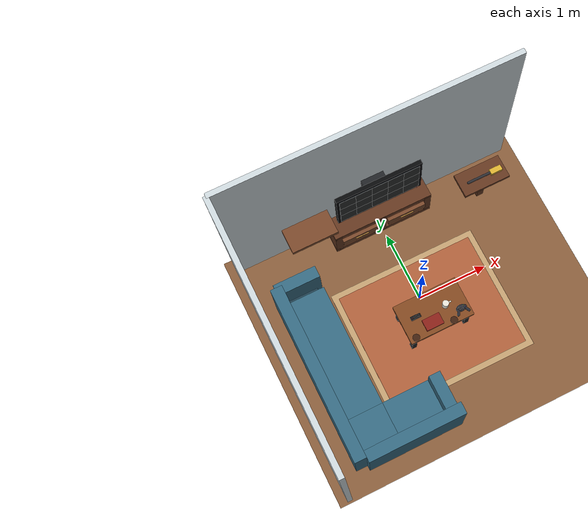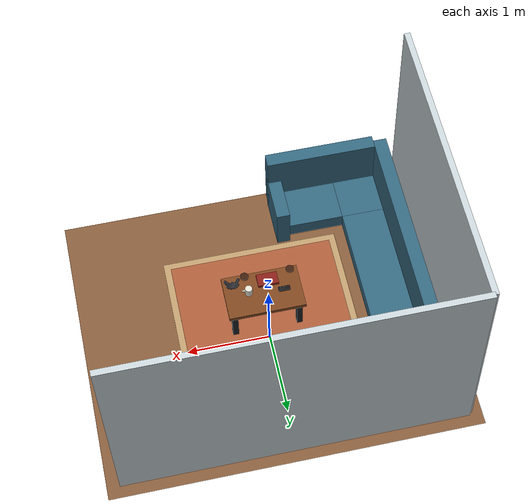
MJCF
<mujoco model="google_robot_living_room">
  <compiler angle="radian" autolimits="true"/>
  <option gravity="0 0 -9.81" timestep="0.002"/>

  <visual>
    <global offwidth="1920" offheight="1080"/>
    <quality shadowsize="4096"/>
    <headlight ambient="0.24 0.25 0.27" diffuse="0.55 0.56 0.58"
               specular="0.12 0.12 0.12"/>
  </visual>

  <default>
    <joint damping="0.8"/>
    <geom condim="4" friction="0.9 0.03 0.01"/>
    <default class="visual">
      <geom contype="0" conaffinity="0" group="1"/>
    </default>
    <default class="collision">
      <geom group="3"/>
    </default>
  </default>

  <asset>
    <texture name="living_sky" type="skybox" builtin="gradient"
             rgb1="0.72 0.82 0.94" rgb2="0.20 0.29 0.43"
             width="512" height="3072"/>
    <texture name="living_floor_tex" type="2d" builtin="checker"
             rgb1="0.56 0.39 0.25" rgb2="0.48 0.32 0.20"
             width="256" height="256" mark="none"/>
    <material name="living_floor" texture="living_floor_tex" texrepeat="8 6"/>
    <material name="media_wall" rgba="0.78 0.82 0.84 1" roughness="0.92"/>
    <material name="rug" rgba="0.66 0.36 0.22 1" roughness="0.95"/>
    <material name="rug_border" rgba="0.74 0.61 0.43 1" roughness="0.95"/>
    <material name="couch_fabric" rgba="0.20 0.40 0.49 1" roughness="0.86"/>
    <material name="couch_frame" rgba="0.11 0.23 0.29 1"/>
    <material name="table_wood" rgba="0.49 0.27 0.12 1" roughness="0.60"/>
    <material name="table_metal" rgba="0.12 0.13 0.14 1" specular="0.45"/>
    <material name="console_wood" rgba="0.38 0.21 0.12 1" roughness="0.58"/>
    <material name="console_face" rgba="0.46 0.27 0.16 1" roughness="0.62"/>
    <material name="brass" rgba="0.72 0.52 0.22 1" specular="0.5" roughness="0.32"/>
    <material name="tv_frame" rgba="0.025 0.028 0.032 1" specular="0.5"/>
    <material name="tv_screen" rgba="0.055 0.075 0.095 1" specular="0.8"/>
    <material name="dust" rgba="0.62 0.62 0.58 0.42"/>
    <material name="dust_film" rgba="0.58 0.55 0.48 0.24" roughness="1"/>
    <material name="remote" rgba="0.08 0.08 0.09 1"/>
    <material name="book" rgba="0.52 0.12 0.09 1"/>
    <material name="ceramic" rgba="0.88 0.87 0.82 1" specular="0.35"/>
    <material name="coaster" rgba="0.24 0.12 0.055 1"/>
    <material name="controller" rgba="0.16 0.16 0.19 1"/>
    <material name="duster_handle" rgba="0.18 0.18 0.20 1"/>
    <material name="duster_head" rgba="0.84 0.68 0.18 1"/>
    <material name="target_marker" rgba="0.18 0.65 0.30 0.16"/>
  </asset>

  <worldbody>
    <light name="ceiling_light" pos="0 -0.45 3.25" dir="0 0 -1"
           diffuse="0.92 0.82 0.70" specular="0.20 0.18 0.16"
           castshadow="true"/>
    <light name="window_fill" pos="1.7 -0.9 2.35" dir="-0.65 0.35 -0.68"
           diffuse="0.48 0.62 0.78" specular="0.12 0.15 0.18"/>
    <light name="media_wall_wash" pos="-1.15 0.65 2.15" dir="0.35 0.55 -0.75"
           diffuse="0.42 0.34 0.27" specular="0.08 0.07 0.06"/>

    <geom name="floor" type="plane" size="2.2 1.85 0.02"
          pos="0 -0.20 0" material="living_floor"/>
    <!-- Full-height north and west walls form the visible room corner.  The
         north wall is set behind the closed drawer backs so storage remains
         collision-free. -->
    <body name="media_feature_wall">
      <geom name="media_feature_wall_panel" type="box" size="2.05 0.035 1.35"
            pos="0 1.48 1.35" material="media_wall"/>
      <geom name="west_feature_wall_panel" type="box" size="0.035 1.75 1.35"
            pos="-2.05 -0.27 1.35" material="media_wall"/>
    </body>

    <!-- A flat, non-colliding area rug lifts the seating group visually
         without changing navigation or manipulation contact. -->
    <body name="living_room_rug">
      <geom name="living_room_rug_border" class="visual" type="box"
            size="1.08 0.91 0.004" pos="0 -0.35 0.007"
            material="rug_border"/>
      <geom name="living_room_rug_field" class="visual" type="box"
            size="1.00 0.83 0.005" pos="0 -0.35 0.012"
            material="rug"/>
    </body>
    <body name="living_room_couch">
      <geom name="couch_corner_base" type="box" size="0.25 0.25 0.06"
            pos="-1.47 -1.47 0.30" material="couch_frame"/>
      <geom name="couch_west_base" type="box" size="0.25 0.95 0.06"
            pos="-1.47 -0.27 0.30" material="couch_frame"/>
      <geom name="couch_south_base" type="box" size="0.375 0.25 0.06"
            pos="-0.845 -1.47 0.30" material="couch_frame"/>

      <geom name="couch_leg_corner" type="box" size="0.045 0.045 0.12"
            pos="-1.47 -1.47 0.12" material="couch_frame"/>
      <geom name="couch_leg_west_north" type="box" size="0.045 0.045 0.12"
            pos="-1.47 0.63 0.12" material="couch_frame"/>
      <geom name="couch_leg_west_middle" type="box" size="0.045 0.045 0.12"
            pos="-1.47 -0.42 0.12" material="couch_frame"/>
      <geom name="couch_leg_south_east" type="box" size="0.045 0.045 0.12"
            pos="-0.47 -1.47 0.12" material="couch_frame"/>

      <geom name="couch_corner_seat" type="box" size="0.28 0.28 0.09"
            pos="-1.43 -1.43 0.45" material="couch_fabric"/>
      <geom name="couch_west_seat" type="box" size="0.28 0.86 0.09"
            pos="-1.43 -0.29 0.45" material="couch_fabric"/>
      <geom name="couch_south_seat" type="box" size="0.325 0.28 0.09"
            pos="-0.825 -1.43 0.45" material="couch_fabric"/>

      <geom name="couch_west_back" type="box" size="0.08 1.20 0.42"
            pos="-1.74 -0.55 0.72" material="couch_fabric"/>
      <geom name="couch_south_back" type="box" size="0.66 0.08 0.42"
            pos="-1.00 -1.74 0.72" material="couch_fabric"/>
      <geom name="couch_north_arm" type="box" size="0.30 0.08 0.28"
            pos="-1.45 0.73 0.50" material="couch_fabric"/>
      <geom name="couch_east_arm" type="box" size="0.08 0.30 0.28"
            pos="-0.42 -1.45 0.50" material="couch_fabric"/>
    </body>

    <!-- Fixed rigid coffee table. -->
    <body name="coffee_table" pos="0 -0.35 0">
      <geom name="coffee_table_top" type="box" size="0.46 0.28 0.025"
            pos="0 0 0.46" material="table_wood"/>
      <geom name="coffee_table_leg_nw" type="box" size="0.035 0.035 0.205"
            pos="-0.39 0.21 0.23" material="table_metal" mass="1.2"/>
      <geom name="coffee_table_leg_ne" type="box" size="0.035 0.035 0.205"
            pos="0.39 0.21 0.23" material="table_metal" mass="1.2"/>
      <geom name="coffee_table_leg_sw" type="box" size="0.035 0.035 0.205"
            pos="-0.39 -0.21 0.23" material="table_metal" mass="1.2"/>
      <geom name="coffee_table_leg_se" type="box" size="0.035 0.035 0.205"
            pos="0.39 -0.21 0.23" material="table_metal" mass="1.2"/>
      <site name="coffee_table_frame" pos="0 0 0.49" size="0.01"
            rgba="0 0 0 0" group="5"/>
      <site name="table_place_remote" pos="-0.25 0.02 0.487" size="0.045 0.035 0.003"
            type="box" material="target_marker" group="4"/>
      <site name="table_place_mug" pos="0.17 -0.01 0.487" size="0.055 0.055 0.003"
            type="box" material="target_marker" group="4"/>
      <site name="table_place_book" pos="-0.08 -0.14 0.487" size="0.13 0.08 0.003"
            type="box" material="target_marker" group="4"/>
      <site name="table_place_controller" pos="0.34 -0.14 0.487"
            size="0.095 0.075 0.003" type="box"
            material="target_marker" group="4"/>
    </body>

    <!-- Independent rigid clutter rests on the moving tabletop through contact. -->
    <body name="remote_control" pos="-0.25 -0.33 0.502">
      <freejoint name="remote_control_free"/>
      <geom name="remote_control_collision" type="box" size="0.070 0.027 0.012"
            material="remote" mass="0.18" friction="1.1 0.04 0.01"/>
      <geom name="remote_button_1" class="visual" type="cylinder" size="0.006 0.002"
            pos="-0.025 0 0.014" material="dust"/>
      <geom name="remote_button_2" class="visual" type="cylinder" size="0.006 0.002"
            pos="0 0 0.014" material="dust"/>
      <!-- A visible keypad makes the primitive-based prop read as a remote
           control to an RGB detector instead of as a plain dark book. -->
      <geom name="remote_power_button" class="visual" type="cylinder"
            size="0.005 0.002" pos="-0.050 0 0.014" rgba="0.82 0.16 0.12 1"/>
      <geom name="remote_key_1" class="visual" type="cylinder"
            size="0.004 0.002" pos="-0.012 -0.013 0.014" rgba="0.72 0.72 0.70 1"/>
      <geom name="remote_key_2" class="visual" type="cylinder"
            size="0.004 0.002" pos="-0.012 0.013 0.014" rgba="0.72 0.72 0.70 1"/>
      <geom name="remote_key_3" class="visual" type="cylinder"
            size="0.004 0.002" pos="0.006 -0.013 0.014" rgba="0.72 0.72 0.70 1"/>
      <geom name="remote_key_4" class="visual" type="cylinder"
            size="0.004 0.002" pos="0.006 0.013 0.014" rgba="0.72 0.72 0.70 1"/>
      <geom name="remote_key_5" class="visual" type="cylinder"
            size="0.004 0.002" pos="0.024 -0.013 0.014" rgba="0.72 0.72 0.70 1"/>
      <geom name="remote_key_6" class="visual" type="cylinder"
            size="0.004 0.002" pos="0.024 0.013 0.014" rgba="0.72 0.72 0.70 1"/>
      <geom name="remote_key_7" class="visual" type="cylinder"
            size="0.004 0.002" pos="0.042 -0.013 0.014" rgba="0.72 0.72 0.70 1"/>
      <geom name="remote_key_8" class="visual" type="cylinder"
            size="0.004 0.002" pos="0.042 0.013 0.014" rgba="0.72 0.72 0.70 1"/>
      <site name="remote_control_grasp" pos="0 0 0.010" size="0.01"
            rgba="0 0 0 0" group="5"/>
    </body>

    <body name="living_room_mug" pos="0.17 -0.36 0.545">
      <freejoint name="living_room_mug_free"/>
      <geom name="living_room_mug_collision" type="cylinder" size="0.043 0.055"
            material="ceramic" mass="0.34" friction="1.0 0.03 0.01"/>
      <geom name="living_room_mug_handle" type="capsule" size="0.010"
            fromto="0.040 0 0.020 0.075 0 0.020" material="ceramic" mass="0.03"/>
      <site name="living_room_mug_grasp" pos="0 0 0.025" size="0.01"
            rgba="0 0 0 0" group="5"/>
    </body>

    <body name="hardback_book" pos="-0.08 -0.49 0.507">
      <freejoint name="hardback_book_free"/>
      <geom name="hardback_book_collision" type="box" size="0.125 0.080 0.018"
            material="book" mass="0.22" friction="1.0 0.04 0.01"/>
      <geom name="hardback_pages" class="visual" type="box" size="0.117 0.076 0.014"
            pos="0.004 0 0" material="ceramic"/>
      <site name="hardback_book_grasp" pos="0.065 0 0.020" size="0.01"
            rgba="0 0 0 0" group="5"/>
    </body>

    <body name="coaster_left" pos="-0.37 -0.58 0.502">
      <freejoint name="coaster_left_free"/>
      <geom name="coaster_left_collision" type="cylinder" size="0.050 0.008"
            material="coaster" mass="0.08" friction="1.2 0.04 0.01"
            margin="0.0045" solref="0.004 1" solimp="0.99 0.999 0.001"/>
    </body>
    <body name="coaster_right" pos="0.18 -0.59 0.502">
      <freejoint name="coaster_right_free"/>
      <geom name="coaster_right_collision" type="cylinder" size="0.050 0.008"
            material="coaster" mass="0.45" friction="3.0 0.04 0.01"
            margin="0.0045" solref="0.002 1" solimp="0.995 0.9995 0.001"/>
      <site name="coaster_right_mug_place" type="cylinder"
            size="0.034 0.001" pos="0 0 0.009"
            material="target_marker" group="4"/>
    </body>

    <body name="game_controller" pos="0.34 -0.49 0.515">
      <freejoint name="game_controller_free"/>
      <geom name="game_controller_core" type="ellipsoid" size="0.078 0.047 0.022"
            material="controller" mass="0.18" friction="1.0 0.03 0.01"/>
      <geom name="game_controller_left_grip" type="capsule" size="0.018"
            fromto="-0.048 -0.018 0 -0.078 -0.070 -0.006"
            material="controller" mass="0.05"/>
      <geom name="game_controller_right_grip" type="capsule" size="0.018"
            fromto="0.048 -0.018 0 0.078 -0.070 -0.006"
            material="controller" mass="0.05"/>
      <geom name="game_controller_dpad_h" class="visual" type="box"
            size="0.022 0.007 0.004" pos="-0.033 0.003 0.024"
            rgba="0.05 0.05 0.06 1"/>
      <geom name="game_controller_dpad_v" class="visual" type="box"
            size="0.007 0.022 0.004" pos="-0.033 0.003 0.024"
            rgba="0.05 0.05 0.06 1"/>
      <geom name="game_controller_stick_left" class="visual" type="cylinder"
            size="0.010 0.006" pos="-0.018 -0.022 0.024"
            rgba="0.04 0.04 0.05 1"/>
      <geom name="game_controller_stick_right" class="visual" type="cylinder"
            size="0.010 0.006" pos="0.018 -0.022 0.024"
            rgba="0.04 0.04 0.05 1"/>
      <geom name="game_controller_button_n" class="visual" type="cylinder"
            size="0.005 0.004" pos="0.040 0.018 0.024" rgba="0.25 0.70 0.34 1"/>
      <geom name="game_controller_button_e" class="visual" type="cylinder"
            size="0.005 0.004" pos="0.052 0.006 0.024" rgba="0.72 0.24 0.22 1"/>
      <geom name="game_controller_button_s" class="visual" type="cylinder"
            size="0.005 0.004" pos="0.040 -0.006 0.024" rgba="0.28 0.48 0.82 1"/>
      <geom name="game_controller_button_w" class="visual" type="cylinder"
            size="0.005 0.004" pos="0.028 0.006 0.024" rgba="0.86 0.70 0.20 1"/>
      <site name="game_controller_grasp" pos="0 0 0.022" size="0.010"
            rgba="0 0 0 0" group="5"/>
    </body>

    <!-- A clean wall-mounted ledge beside the TV.  The shallow overlap with
         the feature wall makes it read as attached rather than floating. -->
    <body name="media_book_shelf">
      <geom name="media_book_shelf_plank" type="box" size="0.33 0.175 0.03"
            pos="-1.00 1.27 0.75" material="console_face"/>
      <geom name="media_book_shelf_bracket_left" class="visual" type="box"
            size="0.018 0.06 0.09" pos="-1.22 1.385 0.66"
            material="brass"/>
      <geom name="media_book_shelf_bracket_right" class="visual" type="box"
            size="0.018 0.06 0.09" pos="-0.78 1.385 0.66"
            material="brass"/>
      <site name="media_shelf_book_place" type="box"
            size="0.13 0.08 0.003" pos="-1.00 1.14 0.781"
            material="target_marker" group="4"/>
      <site name="media_shelf_controller_place" type="box"
            size="0.10 0.08 0.003" pos="-1.00 1.14 0.781"
            material="target_marker" group="4"/>
    </body>

    <!-- Low media console with two independent south-opening rigid drawers. -->
    <body name="media_console">
      <geom name="media_console_top" type="box" size="0.72 0.15 0.04"
            pos="0 1.25 0.48" material="console_wood"/>
      <geom name="media_console_bottom" type="box" size="0.72 0.15 0.04"
            pos="0 1.25 0.06" material="console_wood"/>
      <geom name="media_console_left_side" type="box" size="0.05 0.15 0.21"
            pos="-0.67 1.25 0.27" material="console_wood"/>
      <geom name="media_console_right_side" type="box" size="0.05 0.15 0.21"
            pos="0.67 1.25 0.27" material="console_wood"/>
      <geom name="media_console_divider" type="box" size="0.035 0.15 0.21"
            pos="0 1.25 0.27" material="console_wood"/>
      <geom name="media_console_back" type="box" size="0.62 0.025 0.17"
            pos="0 1.375 0.27" material="console_wood"/>
      <body name="media_console_left_drawer" pos="-0.34 1.25 0.27">
        <joint name="media_console_left_drawer_slide" type="slide" axis="0 -1 0"
               range="0 0.27" damping="8" frictionloss="0.5" armature="0.5"/>
        <geom name="media_console_left_drawer_bottom" type="box"
              size="0.26 0.14 0.02" pos="0 0 -0.04"
              material="console_wood" mass="2.2"/>
        <geom name="media_console_left_drawer_left" type="box"
              size="0.02 0.14 0.04" pos="-0.25 0 0.02"
              material="console_wood" mass="0.25"/>
        <geom name="media_console_left_drawer_right" type="box"
              size="0.02 0.14 0.04" pos="0.25 0 0.02"
              material="console_wood" mass="0.25"/>
        <geom name="media_console_left_drawer_front" type="box"
              size="0.28 0.025 0.07" pos="0 -0.155 0.02"
              material="console_face" mass="0.5"/>
        <geom name="media_console_left_drawer_back" type="box"
              size="0.26 0.02 0.04" pos="0 0.15 0.02"
              material="console_wood" mass="0.25"/>
        <geom name="media_console_left_drawer_handle" type="capsule" size="0.010"
              fromto="-0.09 -0.183 0.035 0.09 -0.183 0.035"
              material="brass" mass="0.08"/>
        <site name="left_drawer_place_controller" type="box"
              size="0.10 0.08 0.002" pos="0 0 -0.018"
              material="target_marker" group="4"/>
      </body>
      <body name="media_console_right_drawer" pos="0.34 1.25 0.27">
        <joint name="media_console_right_drawer_slide" type="slide" axis="0 -1 0"
               range="0 0.27" damping="8" frictionloss="0.5" armature="0.5"/>
        <geom name="media_console_right_drawer_bottom" type="box"
              size="0.26 0.14 0.02" pos="0 0 -0.04"
              material="console_wood" mass="2.2"/>
        <geom name="media_console_right_drawer_left" type="box"
              size="0.02 0.14 0.04" pos="-0.25 0 0.02"
              material="console_wood" mass="0.25"/>
        <geom name="media_console_right_drawer_right" type="box"
              size="0.02 0.14 0.04" pos="0.25 0 0.02"
              material="console_wood" mass="0.25"/>
        <geom name="media_console_right_drawer_front" type="box"
              size="0.28 0.025 0.07" pos="0 -0.155 0.02"
              material="console_face" mass="0.5"/>
        <geom name="media_console_right_drawer_back" type="box"
              size="0.26 0.02 0.04" pos="0 0.15 0.02"
              material="console_wood" mass="0.25"/>
        <geom name="media_console_right_drawer_handle" type="capsule" size="0.010"
              fromto="-0.09 -0.183 0.035 0.09 -0.183 0.035"
              material="brass" mass="0.08"/>
        <site name="drawer_place_controller" type="box"
              size="0.10 0.08 0.002" pos="0 0 -0.018"
              material="target_marker" group="4"/>
      </body>
    </body>

    <!-- Wall-mounted TV.  Its calibrated screen pose is unchanged; deleting
         the old post and foot removes the console interpenetration. -->
    <body name="flat_screen_tv" pos="0 1.25 1.08">
      <geom name="tv_frame_collision" type="box" size="0.61 0.030 0.36"
            material="tv_frame"/>
      <geom name="tv_screen_collision" type="box" size="0.57 0.005 0.32"
            pos="0 -0.033 0" material="tv_screen"/>
      <geom name="tv_wall_mount" type="box" size="0.16 0.065 0.12"
            pos="0 0.130 0" material="table_metal"/>
      <geom name="tv_power_led" class="visual" type="sphere" size="0.008"
            pos="0.545 -0.038 -0.335" rgba="0.34 0.04 0.03 1"/>

      <!-- Fifteen seamless visual tiles form one continuous layer at reset.
           Each tile fades independently only after its cell is verified. -->
      <geom name="dust_cell_visual_0" class="visual" type="plane" size="0.114 0.1067 0.001" pos="-0.456 -0.041 0.2133" euler="1.5708 0 0" material="dust_film"/>
      <geom name="dust_cell_visual_1" class="visual" type="plane" size="0.114 0.1067 0.001" pos="-0.228 -0.041 0.2133" euler="1.5708 0 0" material="dust_film"/>
      <geom name="dust_cell_visual_2" class="visual" type="plane" size="0.114 0.1067 0.001" pos="0 -0.041 0.2133" euler="1.5708 0 0" material="dust_film"/>
      <geom name="dust_cell_visual_3" class="visual" type="plane" size="0.114 0.1067 0.001" pos="0.228 -0.041 0.2133" euler="1.5708 0 0" material="dust_film"/>
      <geom name="dust_cell_visual_4" class="visual" type="plane" size="0.114 0.1067 0.001" pos="0.456 -0.041 0.2133" euler="1.5708 0 0" material="dust_film"/>
      <geom name="dust_cell_visual_5" class="visual" type="plane" size="0.114 0.1067 0.001" pos="-0.456 -0.041 0" euler="1.5708 0 0" material="dust_film"/>
      <geom name="dust_cell_visual_6" class="visual" type="plane" size="0.114 0.1067 0.001" pos="-0.228 -0.041 0" euler="1.5708 0 0" material="dust_film"/>
      <geom name="dust_cell_visual_7" class="visual" type="plane" size="0.114 0.1067 0.001" pos="0 -0.041 0" euler="1.5708 0 0" material="dust_film"/>
      <geom name="dust_cell_visual_8" class="visual" type="plane" size="0.114 0.1067 0.001" pos="0.228 -0.041 0" euler="1.5708 0 0" material="dust_film"/>
      <geom name="dust_cell_visual_9" class="visual" type="plane" size="0.114 0.1067 0.001" pos="0.456 -0.041 0" euler="1.5708 0 0" material="dust_film"/>
      <geom name="dust_cell_visual_10" class="visual" type="plane" size="0.114 0.1067 0.001" pos="-0.456 -0.041 -0.2133" euler="1.5708 0 0" material="dust_film"/>
      <geom name="dust_cell_visual_11" class="visual" type="plane" size="0.114 0.1067 0.001" pos="-0.228 -0.041 -0.2133" euler="1.5708 0 0" material="dust_film"/>
      <geom name="dust_cell_visual_12" class="visual" type="plane" size="0.114 0.1067 0.001" pos="0 -0.041 -0.2133" euler="1.5708 0 0" material="dust_film"/>
      <geom name="dust_cell_visual_13" class="visual" type="plane" size="0.114 0.1067 0.001" pos="0.228 -0.041 -0.2133" euler="1.5708 0 0" material="dust_film"/>
      <geom name="dust_cell_visual_14" class="visual" type="plane" size="0.114 0.1067 0.001" pos="0.456 -0.041 -0.2133" euler="1.5708 0 0" material="dust_film"/>

      <site name="tv_cell_0" pos="-0.32 -0.060 0.20" size="0.012" rgba="0 0 0 0" group="5"/>
      <site name="tv_cell_1" pos="-0.16 -0.060 0.20" size="0.012" rgba="0 0 0 0" group="5"/>
      <site name="tv_cell_2" pos="0 -0.060 0.20" size="0.012" rgba="0 0 0 0" group="5"/>
      <site name="tv_cell_3" pos="0.16 -0.060 0.20" size="0.012" rgba="0 0 0 0" group="5"/>
      <site name="tv_cell_4" pos="0.32 -0.060 0.20" size="0.012" rgba="0 0 0 0" group="5"/>
      <site name="tv_cell_5" pos="-0.32 -0.060 0" size="0.012" rgba="0 0 0 0" group="5"/>
      <site name="tv_cell_6" pos="-0.16 -0.060 0" size="0.012" rgba="0 0 0 0" group="5"/>
      <site name="tv_cell_7" pos="0 -0.060 0" size="0.012" rgba="0 0 0 0" group="5"/>
      <site name="tv_cell_8" pos="0.16 -0.060 0" size="0.012" rgba="0 0 0 0" group="5"/>
      <site name="tv_cell_9" pos="0.32 -0.060 0" size="0.012" rgba="0 0 0 0" group="5"/>
      <site name="tv_cell_10" pos="-0.32 -0.060 -0.20" size="0.012" rgba="0 0 0 0" group="5"/>
      <site name="tv_cell_11" pos="-0.16 -0.060 -0.20" size="0.012" rgba="0 0 0 0" group="5"/>
      <site name="tv_cell_12" pos="0 -0.060 -0.20" size="0.012" rgba="0 0 0 0" group="5"/>
      <site name="tv_cell_13" pos="0.16 -0.060 -0.20" size="0.012" rgba="0 0 0 0" group="5"/>
      <site name="tv_cell_14" pos="0.32 -0.060 -0.20" size="0.012" rgba="0 0 0 0" group="5"/>
    </body>

    <body name="duster_rest">
      <geom name="duster_rest_top" type="box" size="0.34 0.17 0.025"
            pos="1.45 1.02 0.55" material="console_wood"/>
      <geom name="duster_rest_leg" type="box" size="0.05 0.05 0.27"
            pos="1.45 1.02 0.27" material="console_wood"/>
      <site name="duster_return_site" type="box" size="0.25 0.10 0.004"
            pos="1.45 1.02 0.58" rgba="0.18 0.65 0.30 0.12" group="4"/>
    </body>

    <body name="rigid_duster" pos="1.43 1.00 0.602">
      <freejoint name="rigid_duster_free"/>
      <geom name="rigid_duster_handle_collision" type="capsule" size="0.018"
            fromto="-0.20 0 0 0.14 0 0" material="duster_handle" mass="0.28"/>
      <geom name="rigid_duster_head_collision" type="box" size="0.085 0.038 0.025"
            pos="0.22 0 0" material="duster_head" mass="0.18"/>
      <site name="rigid_duster_grasp" pos="-0.09 0 0" size="0.012"
            rgba="0 0 0 0" group="5"/>
      <site name="rigid_duster_head" pos="0.22 0 0" size="0.012"
            rgba="0 0 0 0" group="5"/>
    </body>

    <body name="wrist_camera_mount" pos="0 -1.0 0.9">
      <camera name="wrist_camera" pos="0 0 0" xyaxes="1 0 0 0 1 0"/>
    </body>
    <camera name="overhead_camera" pos="0 -0.45 4.2" xyaxes="1 0 0 0 1 0" fovy="58"/>
    <camera name="room_corner_camera" pos="1.72 -1.68 2.25" xyaxes="0.72 0.69 0 -0.39 0.41 0.82" fovy="64"/>
    <camera name="tv_camera" pos="0 0.15 1.20" xyaxes="-1 0 0 0 0 1" fovy="54"/>
    <camera name="table_camera" pos="1.45 -1.15 1.35" xyaxes="0.67 0.74 0 -0.43 0.39 0.81" fovy="58"/>
    <!-- Scene-owned fifth RGB-D view; virtual inspection temporarily
         repositions all five fixed room cameras and restores them afterward. -->
    <camera name="inspection_oblique_camera" pos="-1.35 -1.20 1.45"
            xyaxes="0.72 -0.69 0 0.42 0.44 0.79" fovy="60"/>
  </worldbody>

  <contact>
    <exclude body1="media_console" body2="media_console_left_drawer"/>
    <exclude body1="media_console" body2="media_console_right_drawer"/>
    <pair name="mug_coaster_support"
          geom1="living_room_mug_collision"
          geom2="coaster_right_collision"
          condim="4" friction="3.0 3.0 0.04 0.01 0.01"
          margin="0.0012" solref="0.004 1"
          solimp="0.99 0.999 0.001"/>
  </contact>
  <equality/>
  <actuator>
    <position name="media_console_left_drawer_actuator"
              joint="media_console_left_drawer_slide" kp="350"
              ctrlrange="0 0.27" forcerange="-240 240"/>
    <position name="media_console_right_drawer_actuator"
              joint="media_console_right_drawer_slide" kp="350"
              ctrlrange="0 0.27" forcerange="-240 240"/>
  </actuator>
</mujoco>
